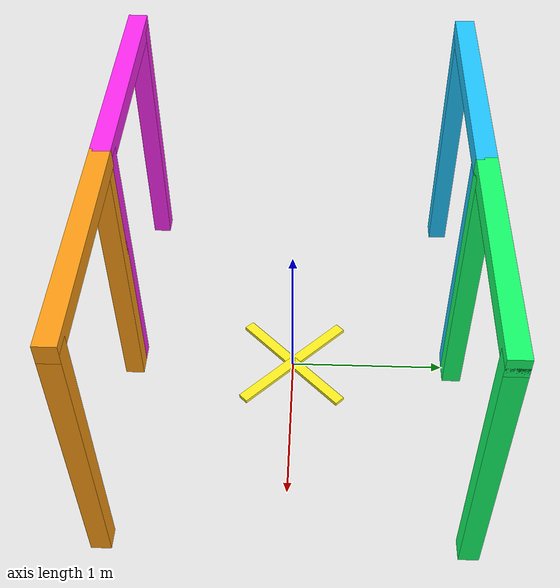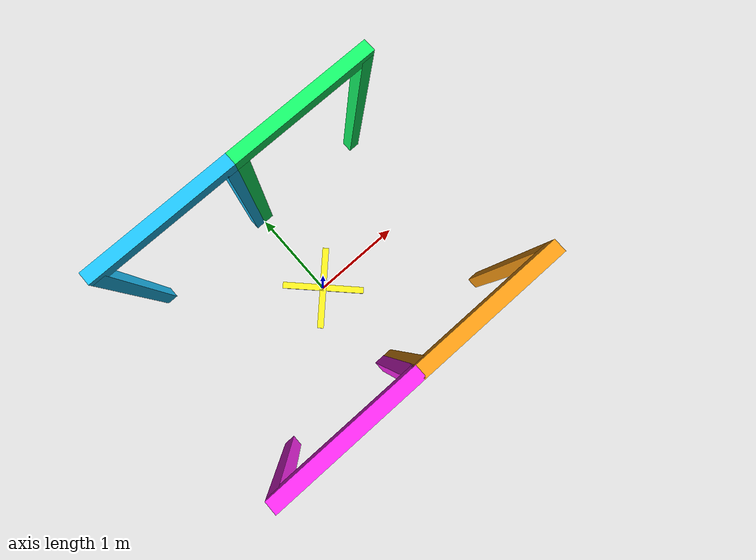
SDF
<?xml version="1.0"?>
<sdf version="1.9">
  <model name="tinympc_figure_eight_course">
    <static>true</static>

    <link name="northeast_gate">
      <pose>0.70 1.061 0 0 0 0</pose>
      <visual name="left_post_visual">
        <pose>-0.65 0 0.875 0 0 0</pose>
        <geometry><box><size>0.12 0.12 1.75</size></box></geometry>
        <material><ambient>0.05 0.95 0.35 1</ambient><diffuse>0.08 1 0.42 1</diffuse></material>
      </visual>
      <visual name="right_post_visual">
        <pose>0.65 0 0.875 0 0 0</pose>
        <geometry><box><size>0.12 0.12 1.75</size></box></geometry>
        <material><ambient>0.05 0.95 0.35 1</ambient><diffuse>0.08 1 0.42 1</diffuse></material>
      </visual>
      <visual name="top_visual">
        <pose>0 0 1.75 0 0 0</pose>
        <geometry><box><size>1.42 0.12 0.12</size></box></geometry>
        <material><ambient>0.05 0.95 0.35 1</ambient><diffuse>0.08 1 0.42 1</diffuse></material>
      </visual>
    </link>

    <link name="northwest_gate">
      <pose>-0.70 1.061 0 0 0 0</pose>
      <visual name="left_post_visual">
        <pose>-0.65 0 0.875 0 0 0</pose>
        <geometry><box><size>0.12 0.12 1.75</size></box></geometry>
        <material><ambient>0.10 0.72 1 1</ambient><diffuse>0.12 0.78 1 1</diffuse></material>
      </visual>
      <visual name="right_post_visual">
        <pose>0.65 0 0.875 0 0 0</pose>
        <geometry><box><size>0.12 0.12 1.75</size></box></geometry>
        <material><ambient>0.10 0.72 1 1</ambient><diffuse>0.12 0.78 1 1</diffuse></material>
      </visual>
      <visual name="top_visual">
        <pose>0 0 1.75 0 0 0</pose>
        <geometry><box><size>1.42 0.12 0.12</size></box></geometry>
        <material><ambient>0.10 0.72 1 1</ambient><diffuse>0.12 0.78 1 1</diffuse></material>
      </visual>
    </link>

    <link name="southeast_gate">
      <pose>0.70 -1.061 0 0 0 0</pose>
      <visual name="left_post_visual">
        <pose>-0.65 0 0.875 0 0 0</pose>
        <geometry><box><size>0.12 0.12 1.75</size></box></geometry>
        <material><ambient>1 0.56 0.05 1</ambient><diffuse>1 0.62 0.08 1</diffuse></material>
      </visual>
      <visual name="right_post_visual">
        <pose>0.65 0 0.875 0 0 0</pose>
        <geometry><box><size>0.12 0.12 1.75</size></box></geometry>
        <material><ambient>1 0.56 0.05 1</ambient><diffuse>1 0.62 0.08 1</diffuse></material>
      </visual>
      <visual name="top_visual">
        <pose>0 0 1.75 0 0 0</pose>
        <geometry><box><size>1.42 0.12 0.12</size></box></geometry>
        <material><ambient>1 0.56 0.05 1</ambient><diffuse>1 0.62 0.08 1</diffuse></material>
      </visual>
    </link>

    <link name="southwest_gate">
      <pose>-0.70 -1.061 0 0 0 0</pose>
      <visual name="left_post_visual">
        <pose>-0.65 0 0.875 0 0 0</pose>
        <geometry><box><size>0.12 0.12 1.75</size></box></geometry>
        <material><ambient>0.92 0.12 0.88 1</ambient><diffuse>1 0.16 0.95 1</diffuse></material>
      </visual>
      <visual name="right_post_visual">
        <pose>0.65 0 0.875 0 0 0</pose>
        <geometry><box><size>0.12 0.12 1.75</size></box></geometry>
        <material><ambient>0.92 0.12 0.88 1</ambient><diffuse>1 0.16 0.95 1</diffuse></material>
      </visual>
      <visual name="top_visual">
        <pose>0 0 1.75 0 0 0</pose>
        <geometry><box><size>1.42 0.12 0.12</size></box></geometry>
        <material><ambient>0.92 0.12 0.88 1</ambient><diffuse>1 0.16 0.95 1</diffuse></material>
      </visual>
    </link>

    <link name="center_crossing_marker">
      <pose>0 0 0.012 0 0 0</pose>
      <visual name="diagonal_one">
        <pose>0 0 0 0 0 0.785398</pose>
        <geometry><box><size>0.90 0.07 0.024</size></box></geometry>
        <material><ambient>1 0.9 0.08 1</ambient><diffuse>1 0.95 0.12 1</diffuse></material>
      </visual>
      <visual name="diagonal_two">
        <pose>0 0 0 0 0 -0.785398</pose>
        <geometry><box><size>0.90 0.07 0.024</size></box></geometry>
        <material><ambient>1 0.9 0.08 1</ambient><diffuse>1 0.95 0.12 1</diffuse></material>
      </visual>
    </link>
  </model>
</sdf>
